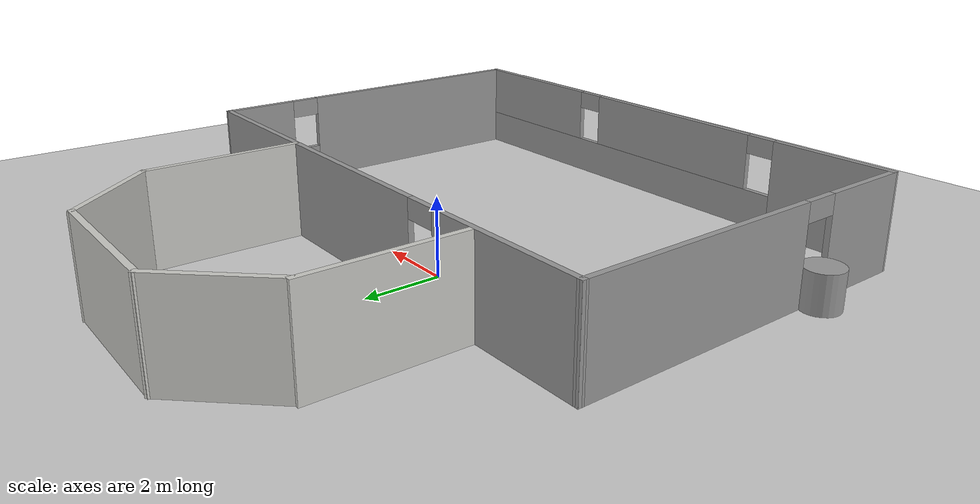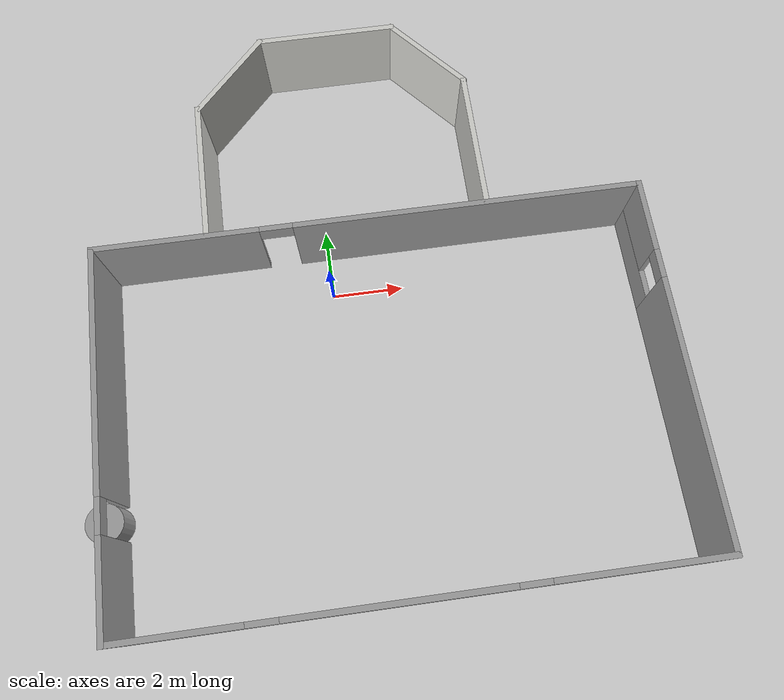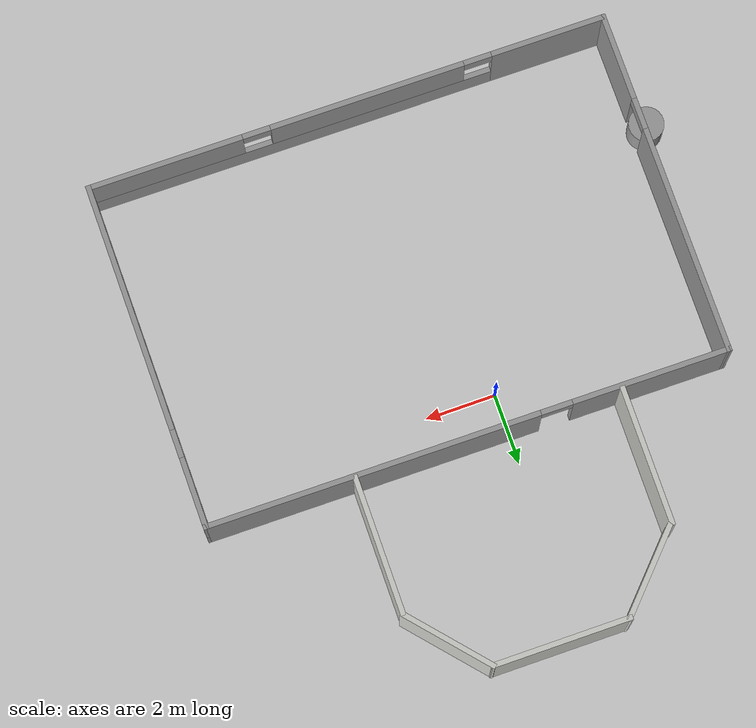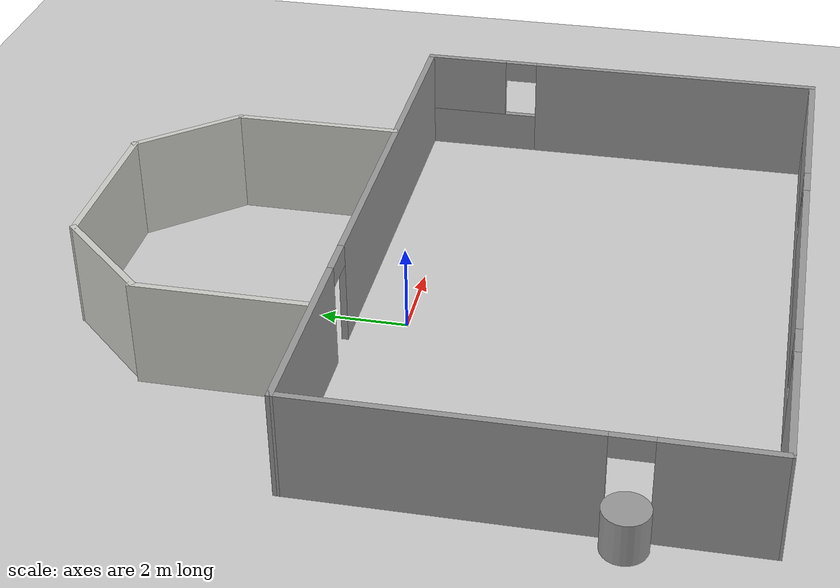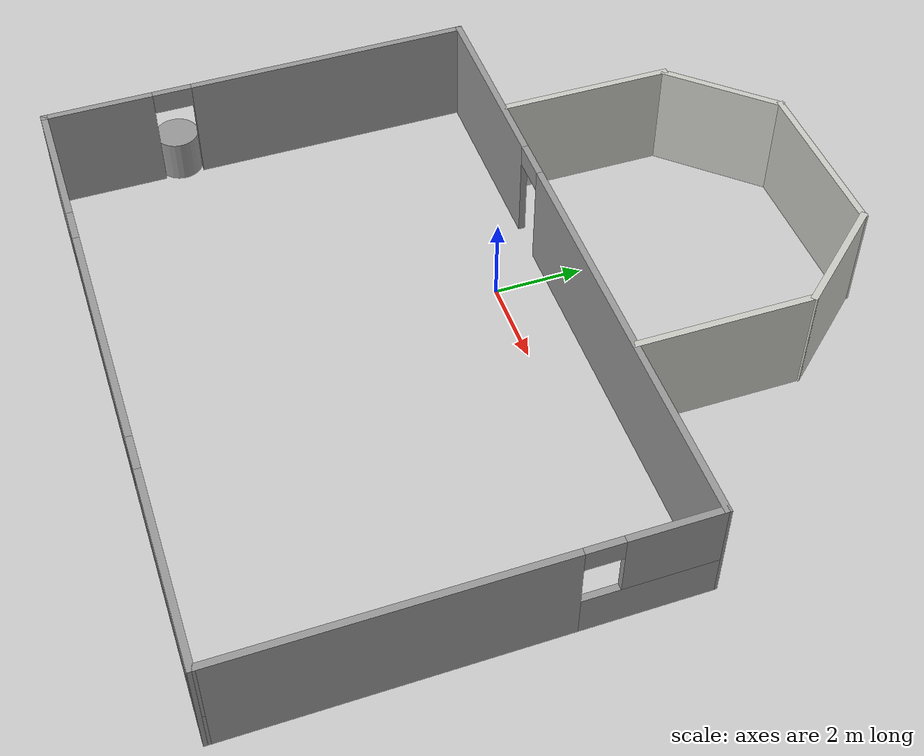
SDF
<sdf version="1.6">
 <world name="default">
  <light name="sun" type="directional">
   <pose>0 0 10 0 -0 0</pose>
   <diffuse>0.8 0.8 0.8 1</diffuse>
   <specular>0.2 0.2 0.2 1</specular>
   <attenuation>
    <range>1000</range>
    <constant>0.9</constant>
    <linear>0.01</linear>
    <quadratic>0.001</quadratic>
   </attenuation>
   <direction>-0.5 0.1 -0.9</direction>
  </light>
  <model name="ground_plane">
   <static>1</static>
   <link name="link">
    <collision name="collision">
     <geometry><plane><normal>0 0 1</normal><size>100 100</size></plane></geometry>
     <surface><friction><ode><mu>100</mu><mu2>50</mu2></ode></friction></surface>
    </collision>
    <visual name="visual">
     <cast_shadows>0</cast_shadows>
     <geometry><plane><normal>0 0 1</normal><size>100 100</size></plane></geometry>
     <material>
      <script><uri>file://media/materials/scripts/gazebo.material</uri><name>Gazebo/Grey</name></script>
     </material>
    </visual>
   </link>
  </model>
  <gravity>0 0 -9.8</gravity>
  <magnetic_field>6e-06 2.3e-05 -4.2e-05</magnetic_field>
  <atmosphere type="adiabatic"/>
  <physics name="default_physics" default="0" type="ode">
   <max_step_size>0.001</max_step_size>
   <real_time_factor>1</real_time_factor>
   <real_time_update_rate>1000</real_time_update_rate>
  </physics>
  <scene><ambient>0.4 0.4 0.4 1</ambient><background>0.7 0.7 0.7 1</background><shadows>1</shadows></scene>
  <spherical_coordinates>
   <surface_model>EARTH_WGS84</surface_model>
   <latitude_deg>0</latitude_deg>
   <longitude_deg>0</longitude_deg>
   <elevation>0</elevation>
   <heading_deg>0</heading_deg>
  </spherical_coordinates>
  <model name="Hospital_Room">
   <pose>1.27303 -0.690427 0 0 -0 0</pose>
   <link name="Wall_0">
    <pose>0.023068 -7.9212 0 0 -0 -0.003591</pose>
    <visual name="Wall_0_Visual_0">
     <pose>-5.83368 0 1.25 0 -0 0</pose>
     <geometry><box><size>3.33264 0.15 2.5</size></box></geometry>
     <material>
      <script><uri>file://media/materials/scripts/gazebo.material</uri><name>Gazebo/Grey</name></script>
      <ambient>1 1 1 1</ambient>
     </material>
     <meta><layer>0</layer></meta>
    </visual>
    <collision name="Wall_0_Collision_0">
     <geometry><box><size>3.33264 0.15 2.5</size></box></geometry>
     <pose>-5.83368 0 1.25 0 -0 0</pose>
    </collision>
    <visual name="Wall_0_Visual_1">
     <pose>1.66632 0 0.5 0 -0 0</pose>
     <geometry><box><size>11.6674 0.15 1</size></box></geometry>
     <material>
      <script><uri>file://media/materials/scripts/gazebo.material</uri><name>Gazebo/Grey</name></script>
      <ambient>1 1 1 1</ambient>
     </material>
     <meta><layer>0</layer></meta>
    </visual>
    <collision name="Wall_0_Collision_1">
     <geometry><box><size>11.6674 0.15 1</size></box></geometry>
     <pose>1.66632 0 0.5 0 -0 0</pose>
    </collision>
    <visual name="Wall_0_Visual_2">
     <pose>-0.574742 0 1.75 0 -0 0</pose>
     <geometry><box><size>5.58524 0.15 1.5</size></box></geometry>
     <material>
      <script><uri>file://media/materials/scripts/gazebo.material</uri><name>Gazebo/Grey</name></script>
      <ambient>1 1 1 1</ambient>
     </material>
     <meta><layer>0</layer></meta>
    </visual>
    <collision name="Wall_0_Collision_2">
     <geometry><box><size>5.58524 0.15 1.5</size></box></geometry>
     <pose>-0.574742 0 1.75 0 -0 0</pose>
    </collision>
    <visual name="Wall_0_Visual_3">
     <pose>5.25894 0 1.75 0 -0 0</pose>
     <geometry><box><size>4.48212 0.15 1.5</size></box></geometry>
     <material>
      <script><uri>file://media/materials/scripts/gazebo.material</uri><name>Gazebo/Grey</name></script>
      <ambient>1 1 1 1</ambient>
     </material>
     <meta><layer>0</layer></meta>
    </visual>
    <collision name="Wall_0_Collision_3">
     <geometry><box><size>4.48212 0.15 1.5</size></box></geometry>
     <pose>5.25894 0 1.75 0 -0 0</pose>
    </collision>
    <visual name="Wall_0_Visual_4">
     <pose>-3.76736 0 2.25 0 -0 0</pose>
     <geometry><box><size>0.8 0.15 0.5</size></box></geometry>
     <material>
      <script><uri>file://media/materials/scripts/gazebo.material</uri><name>Gazebo/Grey</name></script>
      <ambient>1 1 1 1</ambient>
     </material>
     <meta><layer>0</layer></meta>
    </visual>
    <collision name="Wall_0_Collision_4">
     <geometry><box><size>0.8 0.15 0.5</size></box></geometry>
     <pose>-3.76736 0 2.25 0 -0 0</pose>
    </collision>
    <visual name="Wall_0_Visual_5">
     <pose>2.61788 0 2.25 0 -0 0</pose>
     <geometry><box><size>0.8 0.15 0.5</size></box></geometry>
     <material>
      <script><uri>file://media/materials/scripts/gazebo.material</uri><name>Gazebo/Grey</name></script>
      <ambient>1 1 1 1</ambient>
     </material>
     <meta><layer>0</layer></meta>
    </visual>
    <collision name="Wall_0_Collision_5">
     <geometry><box><size>0.8 0.15 0.5</size></box></geometry>
     <pose>2.61788 0 2.25 0 -0 0</pose>
    </collision>
   </link>
   <link name="Wall_1">
    <pose>7.42506 -3.02292 0 0 -0 1.57548</pose>
    <visual name="Wall_1_Visual_0">
     <pose>-1.42771 0 1.25 0 -0 0</pose>
     <geometry><box><size>7.14458 0.15 2.5</size></box></geometry>
     <material>
      <script><uri>file://media/materials/scripts/gazebo.material</uri><name>Gazebo/Grey</name></script>
      <ambient>1 1 1 1</ambient>
     </material>
     <meta><layer>0</layer></meta>
    </visual>
    <collision name="Wall_1_Collision_0">
     <geometry><box><size>7.14458 0.15 2.5</size></box></geometry>
     <pose>-1.42771 0 1.25 0 -0 0</pose>
    </collision>
    <visual name="Wall_1_Visual_1">
     <pose>3.57229 0 0.5 0 -0 0</pose>
     <geometry><box><size>2.85542 0.15 1</size></box></geometry>
     <material>
      <script><uri>file://media/materials/scripts/gazebo.material</uri><name>Gazebo/Grey</name></script>
      <ambient>1 1 1 1</ambient>
     </material>
     <meta><layer>0</layer></meta>
    </visual>
    <collision name="Wall_1_Collision_1">
     <geometry><box><size>2.85542 0.15 1</size></box></geometry>
     <pose>3.57229 0 0.5 0 -0 0</pose>
    </collision>
    <visual name="Wall_1_Visual_2">
     <pose>3.97229 0 1.75 0 -0 0</pose>
     <geometry><box><size>2.05542 0.15 1.5</size></box></geometry>
     <material>
      <script><uri>file://media/materials/scripts/gazebo.material</uri><name>Gazebo/Grey</name></script>
      <ambient>1 1 1 1</ambient>
     </material>
     <meta><layer>0</layer></meta>
    </visual>
    <collision name="Wall_1_Collision_2">
     <geometry><box><size>2.05542 0.15 1.5</size></box></geometry>
     <pose>3.97229 0 1.75 0 -0 0</pose>
    </collision>
    <visual name="Wall_1_Visual_3">
     <pose>2.54458 0 2.25 0 -0 0</pose>
     <geometry><box><size>0.8 0.15 0.5</size></box></geometry>
     <material>
      <script><uri>file://media/materials/scripts/gazebo.material</uri><name>Gazebo/Grey</name></script>
      <ambient>1 1 1 1</ambient>
     </material>
     <meta><layer>0</layer></meta>
    </visual>
    <collision name="Wall_1_Collision_3">
     <geometry><box><size>0.8 0.15 0.5</size></box></geometry>
     <pose>2.54458 0 2.25 0 -0 0</pose>
    </collision>
   </link>
   <link name="Wall_13">
    <collision name="Wall_13_Collision">
     <geometry><box><size>4 0.15 2.5</size></box></geometry>
     <pose>0 0 1.25 0 -0 0</pose>
    </collision>
    <visual name="Wall_13_Visual">
     <pose>0 0 1.25 0 -0 0</pose>
     <geometry><box><size>4 0.15 2.5</size></box></geometry>
     <material>
      <script><uri>file://media/materials/scripts/gazebo.material</uri><name>Gazebo/CeilingTiled</name></script>
      <ambient>1 1 1 1</ambient>
     </material>
     <meta><layer>0</layer></meta>
    </visual>
    <pose>-4.38514 3.96612 0 0 -0 1.5708</pose>
   </link>
   <link name="Wall_14">
    <collision name="Wall_14_Collision">
     <geometry><box><size>2.91751 0.15 2.5</size></box></geometry>
     <pose>0 0 1.25 0 -0 0</pose>
    </collision>
    <visual name="Wall_14_Visual">
     <pose>0 0 1.25 0 -0 0</pose>
     <geometry><box><size>2.91751 0.15 2.5</size></box></geometry>
     <material>
      <script><uri>file://media/materials/scripts/gazebo.material</uri><name>Gazebo/CeilingTiled</name></script>
      <ambient>1 1 1 1</ambient>
     </material>
     <meta><layer>0</layer></meta>
    </visual>
    <pose>-3.40219 6.90413 0 0 -0 0.821445</pose>
   </link>
   <link name="Wall_15">
    <collision name="Wall_15_Collision">
     <geometry><box><size>4 0.15 2.5</size></box></geometry>
     <pose>0 0 1.25 0 -0 0</pose>
    </collision>
    <visual name="Wall_15_Visual">
     <pose>0 0 1.25 0 -0 0</pose>
     <geometry><box><size>4 0.15 2.5</size></box></geometry>
     <material>
      <script><uri>file://media/materials/scripts/gazebo.material</uri><name>Gazebo/CeilingTiled</name></script>
      <ambient>1 1 1 1</ambient>
     </material>
     <meta><layer>0</layer></meta>
    </visual>
    <pose>-0.534694 7.91715 0 0 -0 0</pose>
   </link>
   <link name="Wall_16">
    <collision name="Wall_16_Collision">
     <geometry><box><size>2.89764 0.15 2.5</size></box></geometry>
     <pose>0 0 1.25 0 -0 0</pose>
    </collision>
    <visual name="Wall_16_Visual">
     <pose>0 0 1.25 0 -0 0</pose>
     <geometry><box><size>2.89764 0.15 2.5</size></box></geometry>
     <material>
      <script><uri>file://media/materials/scripts/gazebo.material</uri><name>Gazebo/CeilingTiled</name></script>
      <ambient>1 1 1 1</ambient>
     </material>
     <meta><layer>0</layer></meta>
    </visual>
    <pose>2.29431 6.88267 0 0 -0 -0.852606</pose>
   </link>
   <link name="Wall_17">
    <collision name="Wall_17_Collision">
     <geometry><box><size>4 0.15 2.5</size></box></geometry>
     <pose>0 0 1.25 0 -0 0</pose>
    </collision>
    <visual name="Wall_17_Visual">
     <pose>0 0 1.25 0 -0 0</pose>
     <geometry><box><size>4 0.15 2.5</size></box></geometry>
     <material>
      <script><uri>file://media/materials/scripts/gazebo.material</uri><name>Gazebo/CeilingTiled</name></script>
      <ambient>1 1 1 1</ambient>
     </material>
     <meta><layer>0</layer></meta>
    </visual>
    <pose>3.19831 3.88273 0 0 -0 -1.5708</pose>
   </link>
   <link name="Wall_2">
    <pose>-0.023068 1.92869 0 0 -0 3.138</pose>
    <visual name="Wall_2_Visual_0">
     <pose>-2.72208 0 1.25 0 -0 0</pose>
     <geometry><box><size>9.55585 0.15 2.5</size></box></geometry>
     <material>
      <script><uri>file://media/materials/scripts/gazebo.material</uri><name>Gazebo/Grey</name></script>
      <ambient>1 1 1 1</ambient>
     </material>
     <meta><layer>0</layer></meta>
    </visual>
    <collision name="Wall_2_Collision_0">
     <geometry><box><size>9.55585 0.15 2.5</size></box></geometry>
     <pose>-2.72208 0 1.25 0 -0 0</pose>
    </collision>
    <visual name="Wall_2_Visual_1">
     <pose>5.22792 0 1.25 0 -0 0</pose>
     <geometry><box><size>4.54415 0.15 2.5</size></box></geometry>
     <material>
      <script><uri>file://media/materials/scripts/gazebo.material</uri><name>Gazebo/Grey</name></script>
      <ambient>1 1 1 1</ambient>
     </material>
     <meta><layer>0</layer></meta>
    </visual>
    <collision name="Wall_2_Collision_1">
     <geometry><box><size>4.54415 0.15 2.5</size></box></geometry>
     <pose>5.22792 0 1.25 0 -0 0</pose>
    </collision>
    <visual name="Wall_2_Visual_2">
     <pose>2.50585 0 2.25 0 -0 0</pose>
     <geometry><box><size>0.9 0.15 0.5</size></box></geometry>
     <material>
      <script><uri>file://media/materials/scripts/gazebo.material</uri><name>Gazebo/Grey</name></script>
      <ambient>1 1 1 1</ambient>
     </material>
     <meta><layer>0</layer></meta>
    </visual>
    <collision name="Wall_2_Collision_2">
     <geometry><box><size>0.9 0.15 0.5</size></box></geometry>
     <pose>2.50585 0 2.25 0 -0 0</pose>
    </collision>
   </link>
   <link name="Wall_20">
    <pose>-7.42506 -2.96959 0 0 -0 -1.56611</pose>
    <visual name="Wall_20_Visual_0">
     <pose>-1.71575 0 1.25 0 -0 0</pose>
     <geometry><box><size>6.5685 0.15 2.5</size></box></geometry>
     <material>
      <script><uri>file://media/materials/scripts/gazebo.material</uri><name>Gazebo/Grey</name></script>
      <ambient>1 1 1 1</ambient>
     </material>
     <meta><layer>0</layer></meta>
    </visual>
    <collision name="Wall_20_Collision_0">
     <geometry><box><size>6.5685 0.15 2.5</size></box></geometry>
     <pose>-1.71575 0 1.25 0 -0 0</pose>
    </collision>
    <visual name="Wall_20_Visual_1">
     <pose>3.73425 0 1.25 0 -0 0</pose>
     <geometry><box><size>2.5315 0.15 2.5</size></box></geometry>
     <material>
      <script><uri>file://media/materials/scripts/gazebo.material</uri><name>Gazebo/Grey</name></script>
      <ambient>1 1 1 1</ambient>
     </material>
     <meta><layer>0</layer></meta>
    </visual>
    <collision name="Wall_20_Collision_1">
     <geometry><box><size>2.5315 0.15 2.5</size></box></geometry>
     <pose>3.73425 0 1.25 0 -0 0</pose>
    </collision>
    <visual name="Wall_20_Visual_2">
     <pose>2.0185 0 2.25 0 -0 0</pose>
     <geometry><box><size>0.9 0.15 0.5</size></box></geometry>
     <material>
      <script><uri>file://media/materials/scripts/gazebo.material</uri><name>Gazebo/Grey</name></script>
      <ambient>1 1 1 1</ambient>
     </material>
     <meta><layer>0</layer></meta>
    </visual>
    <collision name="Wall_20_Collision_2">
     <geometry><box><size>0.9 0.15 0.5</size></box></geometry>
     <pose>2.0185 0 2.25 0 -0 0</pose>
    </collision>
   </link>
   <static>1</static>
  </model>
  <model name="unit_cylinder">
   <pose>-6.43739 -5.6794 0.501933 -0.000698 -0.00381 -0.065506</pose>
   <link name="link">
    <inertial>
     <mass>1</mass>
     <inertia><ixx>0.145833</ixx><ixy>0</ixy><ixz>0</ixz><iyy>0.145833</iyy><iyz>0</iyz><izz>0.125</izz></inertia>
    </inertial>
    <collision name="collision">
     <geometry><cylinder><radius>0.5</radius><length>1</length></cylinder></geometry>
    </collision>
    <visual name="visual">
     <geometry><cylinder><radius>0.5</radius><length>1</length></cylinder></geometry>
     <material>
      <script><name>Gazebo/Grey</name><uri>file://media/materials/scripts/gazebo.material</uri></script>
     </material>
    </visual>
   </link>
  </model>
 </world>
</sdf>
